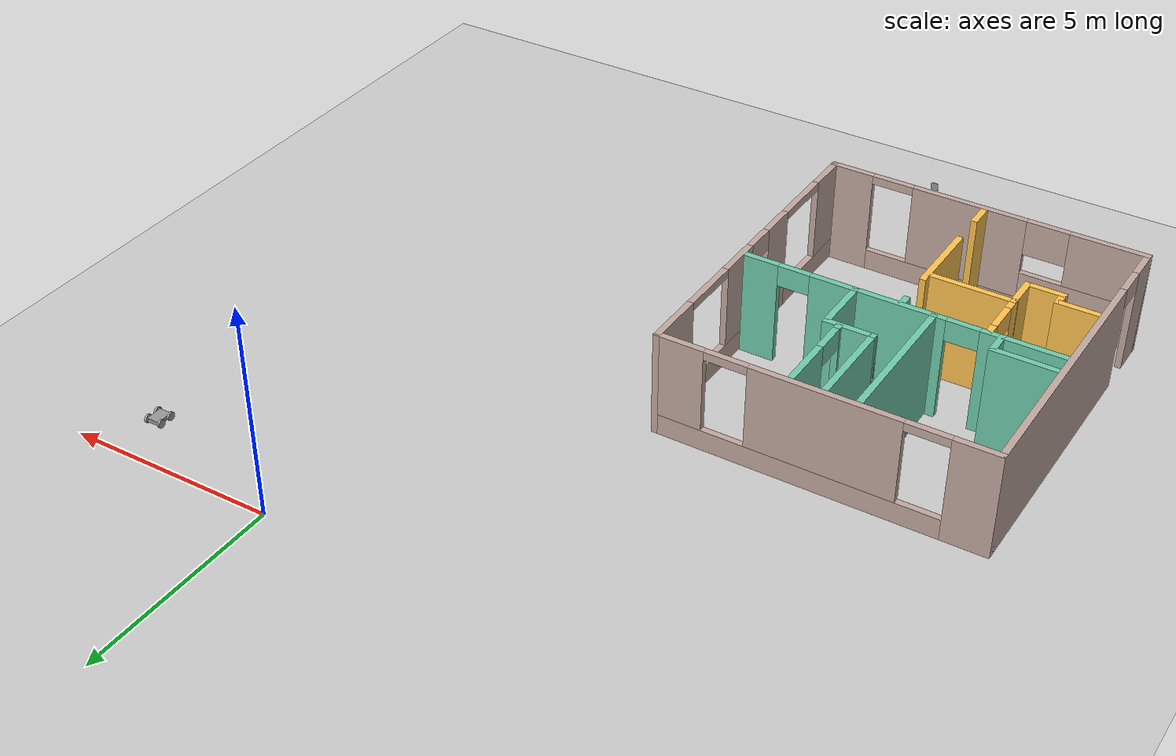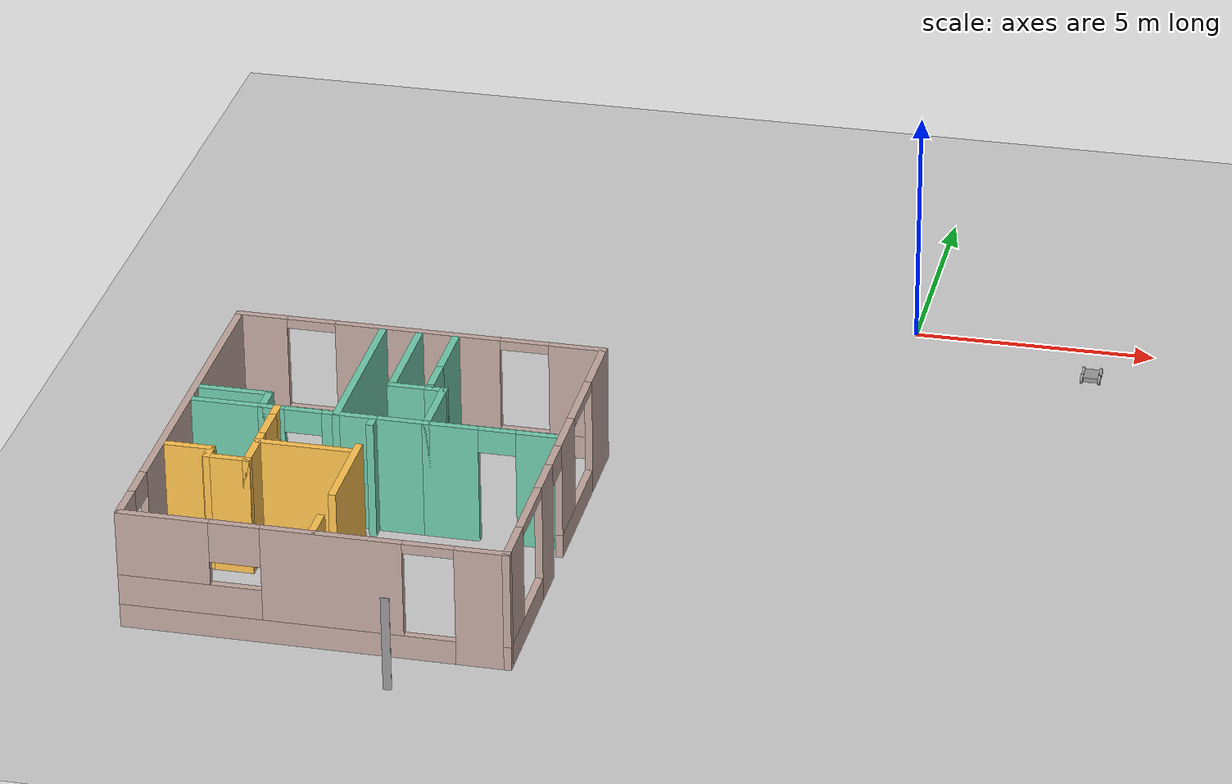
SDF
<sdf version="1.6">
 <world name="default">
  <model name="ground_plane">
   <static>1</static>
   <link name="link">
    <collision name="collision">
     <geometry><plane><normal>0 0 1</normal><size>100 100</size></plane></geometry>
     <surface>
      <contact><collide_bitmask>65535</collide_bitmask></contact>
      <friction><ode><mu>100</mu><mu2>50</mu2></ode></friction>
     </surface>
    </collision>
    <visual name="visual">
     <cast_shadows>0</cast_shadows>
     <geometry><plane><normal>0 0 1</normal><size>100 100</size></plane></geometry>
     <material>
      <script><uri>file://media/materials/scripts/gazebo.material</uri><name>Gazebo/Grey</name></script>
     </material>
    </visual>
   </link>
  </model>
  <model name="4wheelSmallDiff">
   <link name="link_0">
    <inertial>
     <mass>1</mass>
     <inertia>
      <ixx>0.166667</ixx>
      <ixy>0</ixy>
      <ixz>0</ixz>
      <iyy>0.166667</iyy>
      <iyz>0</iyz>
      <izz>0.166667</izz>
     </inertia>
    </inertial>
    <pose>-0.05296 -0.054413 -0.019995 0 -0 0</pose>
    <visual name="visual">
     <geometry><box><size>0.4 0.3 0.1</size></box></geometry>
     <material>
      <lighting>1</lighting>
      <script><uri>file://media/materials/scripts/gazebo.material</uri><name>Gazebo/Grey</name></script>
      <shader type="pixel"><normal_map>__default__</normal_map></shader>
      <ambient>0.3 0.3 0.3 1</ambient>
      <diffuse>0.7 0.7 0.7 1</diffuse>
      <specular>0.01 0.01 0.01 1</specular>
      <emissive>0 0 0 1</emissive>
     </material>
    </visual>
    <collision name="collision">
     <geometry><box><size>0.4 0.3 0.1</size></box></geometry>
     <surface>
      <friction>
       <ode><mu>1</mu><mu2>1</mu2><fdir1>0 0 0</fdir1><slip1>0</slip1><slip2>0</slip2></ode>
       <torsional>
        <coefficient>1</coefficient>
        <patch_radius>0</patch_radius>
        <surface_radius>0</surface_radius>
        <use_patch_radius>1</use_patch_radius>
        <ode><slip>0</slip></ode>
       </torsional>
      </friction>
      <bounce><restitution_coefficient>0</restitution_coefficient><threshold>1e+06</threshold></bounce>
      <contact>
       <collide_without_contact>0</collide_without_contact>
       <collide_without_contact_bitmask>1</collide_without_contact_bitmask>
       <collide_bitmask>1</collide_bitmask>
       <ode>
        <soft_cfm>0</soft_cfm>
        <soft_erp>0.2</soft_erp>
        <kp>1e+13</kp>
        <kd>1</kd>
        <max_vel>0.01</max_vel>
        <min_depth>0</min_depth>
       </ode>
       <bullet>
        <split_impulse>1</split_impulse>
        <split_impulse_penetration_threshold>-0.01</split_impulse_penetration_threshold>
        <soft_cfm>0</soft_cfm>
        <soft_erp>0.2</soft_erp>
        <kp>1e+13</kp>
        <kd>1</kd>
       </bullet>
      </contact>
     </surface>
    </collision>
   </link>
   <link name="link_1">
    <inertial>
     <mass>1</mass>
     <inertia><ixx>0.145833</ixx><ixy>0</ixy><ixz>0</ixz><iyy>0.145833</iyy><iyz>0</iyz><izz>0.125</izz></inertia>
    </inertial>
    <pose>-0.20296 -0.234413 -0.019995 1.5707 -0 0</pose>
    <visual name="visual">
     <geometry><cylinder><radius>0.1</radius><length>0.05</length></cylinder></geometry>
     <material>
      <lighting>1</lighting>
      <script><uri>file://media/materials/scripts/gazebo.material</uri><name>Gazebo/Grey</name></script>
      <shader type="pixel"><normal_map>__default__</normal_map></shader>
      <ambient>0.3 0.3 0.3 1</ambient>
      <diffuse>0.7 0.7 0.7 1</diffuse>
      <specular>0.01 0.01 0.01 1</specular>
      <emissive>0 0 0 1</emissive>
     </material>
    </visual>
    <collision name="collision">
     <geometry><cylinder><radius>0.1</radius><length>0.05</length></cylinder></geometry>
     <surface>
      <friction>
       <ode><mu>1</mu><mu2>1</mu2><fdir1>0 0 0</fdir1><slip1>0</slip1><slip2>0</slip2></ode>
       <torsional>
        <coefficient>1</coefficient>
        <patch_radius>0</patch_radius>
        <surface_radius>0</surface_radius>
        <use_patch_radius>1</use_patch_radius>
        <ode><slip>0</slip></ode>
       </torsional>
      </friction>
      <bounce><restitution_coefficient>0</restitution_coefficient><threshold>1e+06</threshold></bounce>
      <contact>
       <collide_without_contact>0</collide_without_contact>
       <collide_without_contact_bitmask>1</collide_without_contact_bitmask>
       <collide_bitmask>1</collide_bitmask>
       <ode>
        <soft_cfm>0</soft_cfm>
        <soft_erp>0.2</soft_erp>
        <kp>1e+13</kp>
        <kd>1</kd>
        <max_vel>0.01</max_vel>
        <min_depth>0</min_depth>
       </ode>
       <bullet>
        <split_impulse>1</split_impulse>
        <split_impulse_penetration_threshold>-0.01</split_impulse_penetration_threshold>
        <soft_cfm>0</soft_cfm>
        <soft_erp>0.2</soft_erp>
        <kp>1e+13</kp>
        <kd>1</kd>
       </bullet>
      </contact>
     </surface>
    </collision>
   </link>
   <link name="link_1_clone">
    <inertial>
     <mass>1</mass>
     <inertia><ixx>0.145833</ixx><ixy>0</ixy><ixz>0</ixz><iyy>0.145833</iyy><iyz>0</iyz><izz>0.125</izz></inertia>
    </inertial>
    <pose>0.09704 -0.234413 -0.019995 1.5707 -0 0</pose>
    <visual name="visual">
     <geometry><cylinder><radius>0.1</radius><length>0.05</length></cylinder></geometry>
     <material>
      <lighting>1</lighting>
      <script><uri>file://media/materials/scripts/gazebo.material</uri><name>Gazebo/Grey</name></script>
      <shader type="pixel"><normal_map>__default__</normal_map></shader>
      <ambient>0.3 0.3 0.3 1</ambient>
      <diffuse>0.7 0.7 0.7 1</diffuse>
      <specular>0.01 0.01 0.01 1</specular>
      <emissive>0 0 0 1</emissive>
     </material>
    </visual>
    <collision name="collision">
     <geometry><cylinder><radius>0.1</radius><length>0.05</length></cylinder></geometry>
     <surface>
      <friction>
       <ode><mu>1</mu><mu2>1</mu2><fdir1>0 0 0</fdir1><slip1>0</slip1><slip2>0</slip2></ode>
       <torsional>
        <coefficient>1</coefficient>
        <patch_radius>0</patch_radius>
        <surface_radius>0</surface_radius>
        <use_patch_radius>1</use_patch_radius>
        <ode><slip>0</slip></ode>
       </torsional>
      </friction>
      <bounce><restitution_coefficient>0</restitution_coefficient><threshold>1e+06</threshold></bounce>
      <contact>
       <collide_without_contact>0</collide_without_contact>
       <collide_without_contact_bitmask>1</collide_without_contact_bitmask>
       <collide_bitmask>1</collide_bitmask>
       <ode>
        <soft_cfm>0</soft_cfm>
        <soft_erp>0.2</soft_erp>
        <kp>1e+13</kp>
        <kd>1</kd>
        <max_vel>0.01</max_vel>
        <min_depth>0</min_depth>
       </ode>
       <bullet>
        <split_impulse>1</split_impulse>
        <split_impulse_penetration_threshold>-0.01</split_impulse_penetration_threshold>
        <soft_cfm>0</soft_cfm>
        <soft_erp>0.2</soft_erp>
        <kp>1e+13</kp>
        <kd>1</kd>
       </bullet>
      </contact>
     </surface>
    </collision>
   </link>
   <link name="link_1_clone_clone">
    <inertial>
     <mass>1</mass>
     <inertia><ixx>0.145833</ixx><ixy>0</ixy><ixz>0</ixz><iyy>0.145833</iyy><iyz>0</iyz><izz>0.125</izz></inertia>
    </inertial>
    <pose>-0.20296 0.125587 -0.019995 1.5707 -0 0</pose>
    <visual name="visual">
     <geometry><cylinder><radius>0.1</radius><length>0.05</length></cylinder></geometry>
     <material>
      <lighting>1</lighting>
      <script><uri>file://media/materials/scripts/gazebo.material</uri><name>Gazebo/Grey</name></script>
      <shader type="pixel"><normal_map>__default__</normal_map></shader>
      <ambient>0.3 0.3 0.3 1</ambient>
      <diffuse>0.7 0.7 0.7 1</diffuse>
      <specular>0.01 0.01 0.01 1</specular>
      <emissive>0 0 0 1</emissive>
     </material>
    </visual>
    <collision name="collision">
     <geometry><cylinder><radius>0.1</radius><length>0.05</length></cylinder></geometry>
     <surface>
      <friction>
       <ode><mu>1</mu><mu2>1</mu2><fdir1>0 0 0</fdir1><slip1>0</slip1><slip2>0</slip2></ode>
       <torsional>
        <coefficient>1</coefficient>
        <patch_radius>0</patch_radius>
        <surface_radius>0</surface_radius>
        <use_patch_radius>1</use_patch_radius>
        <ode><slip>0</slip></ode>
       </torsional>
      </friction>
      <bounce><restitution_coefficient>0</restitution_coefficient><threshold>1e+06</threshold></bounce>
      <contact>
       <collide_without_contact>0</collide_without_contact>
       <collide_without_contact_bitmask>1</collide_without_contact_bitmask>
       <collide_bitmask>1</collide_bitmask>
       <ode>
        <soft_cfm>0</soft_cfm>
        <soft_erp>0.2</soft_erp>
        <kp>1e+13</kp>
        <kd>1</kd>
        <max_vel>0.01</max_vel>
        <min_depth>0</min_depth>
       </ode>
       <bullet>
        <split_impulse>1</split_impulse>
        <split_impulse_penetration_threshold>-0.01</split_impulse_penetration_threshold>
        <soft_cfm>0</soft_cfm>
        <soft_erp>0.2</soft_erp>
        <kp>1e+13</kp>
        <kd>1</kd>
       </bullet>
      </contact>
     </surface>
    </collision>
   </link>
   <link name="link_1_clone_clone_clone">
    <inertial>
     <mass>1</mass>
     <inertia><ixx>0.145833</ixx><ixy>0</ixy><ixz>0</ixz><iyy>0.145833</iyy><iyz>0</iyz><izz>0.125</izz></inertia>
    </inertial>
    <pose>0.09704 0.125587 -0.019995 1.5707 -0 0</pose>
    <visual name="visual">
     <geometry><cylinder><radius>0.1</radius><length>0.05</length></cylinder></geometry>
     <material>
      <lighting>1</lighting>
      <script><uri>file://media/materials/scripts/gazebo.material</uri><name>Gazebo/Grey</name></script>
      <shader type="pixel"><normal_map>__default__</normal_map></shader>
      <ambient>0.3 0.3 0.3 1</ambient>
      <diffuse>0.7 0.7 0.7 1</diffuse>
      <specular>0.01 0.01 0.01 1</specular>
      <emissive>0 0 0 1</emissive>
     </material>
    </visual>
    <collision name="collision">
     <geometry><cylinder><radius>0.1</radius><length>0.05</length></cylinder></geometry>
     <surface>
      <friction>
       <ode><mu>1</mu><mu2>1</mu2><fdir1>0 0 0</fdir1><slip1>0</slip1><slip2>0</slip2></ode>
       <torsional>
        <coefficient>1</coefficient>
        <patch_radius>0</patch_radius>
        <surface_radius>0</surface_radius>
        <use_patch_radius>1</use_patch_radius>
        <ode><slip>0</slip></ode>
       </torsional>
      </friction>
      <bounce><restitution_coefficient>0</restitution_coefficient><threshold>1e+06</threshold></bounce>
      <contact>
       <collide_without_contact>0</collide_without_contact>
       <collide_without_contact_bitmask>1</collide_without_contact_bitmask>
       <collide_bitmask>1</collide_bitmask>
       <ode>
        <soft_cfm>0</soft_cfm>
        <soft_erp>0.2</soft_erp>
        <kp>1e+13</kp>
        <kd>1</kd>
        <max_vel>0.01</max_vel>
        <min_depth>0</min_depth>
       </ode>
       <bullet>
        <split_impulse>1</split_impulse>
        <split_impulse_penetration_threshold>-0.01</split_impulse_penetration_threshold>
        <soft_cfm>0</soft_cfm>
        <soft_erp>0.2</soft_erp>
        <kp>1e+13</kp>
        <kd>1</kd>
       </bullet>
      </contact>
     </surface>
    </collision>
   </link>
   <joint name="link_0_JOINT_0" type="revolute">
    <parent>link_0</parent>
    <child>link_1</child>
    <axis>
     <xyz>0 0 1</xyz>
     <limit>
      <lower>-1.79769e+308</lower>
      <upper>1.79769e+308</upper>
      <effort>-1</effort>
      <velocity>-1</velocity>
     </limit>
     <dynamics>
      <spring_reference>0</spring_reference>
      <spring_stiffness>0</spring_stiffness>
      <damping>0</damping>
     </dynamics>
     <use_parent_model_frame>0</use_parent_model_frame>
    </axis>
    <physics>
     <ode><limit><cfm>0</cfm><erp>0.2</erp></limit><suspension><cfm>0</cfm><erp>0.2</erp></suspension></ode>
    </physics>
   </joint>
   <joint name="link_0_JOINT_1" type="revolute">
    <parent>link_0</parent>
    <child>link_1_clone</child>
    <axis>
     <xyz>0 0 1</xyz>
     <limit>
      <lower>-1.79769e+308</lower>
      <upper>1.79769e+308</upper>
      <effort>-1</effort>
      <velocity>-1</velocity>
     </limit>
     <dynamics>
      <spring_reference>0</spring_reference>
      <spring_stiffness>0</spring_stiffness>
      <damping>0</damping>
     </dynamics>
     <use_parent_model_frame>0</use_parent_model_frame>
    </axis>
    <physics>
     <ode><limit><cfm>0</cfm><erp>0.2</erp></limit><suspension><cfm>0</cfm><erp>0.2</erp></suspension></ode>
    </physics>
   </joint>
   <joint name="link_0_JOINT_2" type="revolute">
    <parent>link_0</parent>
    <child>link_1_clone_clone</child>
    <axis>
     <xyz>0 0 1</xyz>
     <limit>
      <lower>-1.79769e+308</lower>
      <upper>1.79769e+308</upper>
      <effort>-1</effort>
      <velocity>-1</velocity>
     </limit>
     <dynamics>
      <spring_reference>0</spring_reference>
      <spring_stiffness>0</spring_stiffness>
      <damping>0</damping>
     </dynamics>
     <use_parent_model_frame>0</use_parent_model_frame>
    </axis>
    <physics>
     <ode><limit><cfm>0</cfm><erp>0.2</erp></limit><suspension><cfm>0</cfm><erp>0.2</erp></suspension></ode>
    </physics>
   </joint>
   <joint name="link_0_JOINT_3" type="revolute">
    <parent>link_0</parent>
    <child>link_1_clone_clone_clone</child>
    <axis>
     <xyz>0 0 1</xyz>
     <limit>
      <lower>-1.79769e+308</lower>
      <upper>1.79769e+308</upper>
      <effort>-1</effort>
      <velocity>-1</velocity>
     </limit>
     <dynamics>
      <spring_reference>0</spring_reference>
      <spring_stiffness>0</spring_stiffness>
      <damping>0</damping>
     </dynamics>
     <use_parent_model_frame>0</use_parent_model_frame>
    </axis>
    <physics>
     <ode><limit><cfm>0</cfm><erp>0.2</erp></limit><suspension><cfm>0</cfm><erp>0.2</erp></suspension></ode>
    </physics>
   </joint>
   <static>0</static>
   <pose>3.80566 -1.15308 0.119997 0 -0 1.58948</pose>
  </model>
  <model name="apartment_0">
   <pose>-9 -10.5424 0 0 -0 1.5707</pose>
   <link name="Door_1">
    <collision name="Door_1_Collision">
     <geometry><box><size>0.01 0.17 2</size></box></geometry>
     <pose>0 0 1 0 -0 0</pose>
    </collision>
    <visual name="Door_1_Visual">
     <pose>0 0 1 0 -0 0</pose>
     <geometry><box><size>0.01 0.17 2</size></box></geometry>
     <material>
      <script><uri>file://media/materials/scripts/gazebo.material</uri><name>Gazebo/Grey</name></script>
     </material>
    </visual>
    <pose>-5.25474 -1.71616 0 0 0 -3.11558</pose>
   </link>
   <link name="Wall_0">
    <pose>-0 3.75 0 0 -0 0</pose>
    <visual name="Wall_0_Visual_0">
     <pose>-3.7 0 1.25 0 -0 0</pose>
     <geometry><box><size>0.85 0.15 2.5</size></box></geometry>
     <material>
      <script><uri>file://media/materials/scripts/gazebo.material</uri><name>Gazebo/Grey</name></script>
      <ambient>0.760784 0.662745 0.627451 1</ambient>
     </material>
     <meta><layer>0</layer></meta>
    </visual>
    <collision name="Wall_0_Collision_0">
     <geometry><box><size>0.85 0.15 2.5</size></box></geometry>
     <pose>-3.7 0 1.25 0 -0 0</pose>
    </collision>
    <visual name="Wall_0_Visual_1">
     <pose>0.8 0 1.25 0 -0 0</pose>
     <geometry><box><size>6.65 0.15 2.5</size></box></geometry>
     <material>
      <script><uri>file://media/materials/scripts/gazebo.material</uri><name>Gazebo/Grey</name></script>
      <ambient>0.760784 0.662745 0.627451 1</ambient>
     </material>
     <meta><layer>0</layer></meta>
    </visual>
    <collision name="Wall_0_Collision_1">
     <geometry><box><size>6.65 0.15 2.5</size></box></geometry>
     <pose>0.8 0 1.25 0 -0 0</pose>
    </collision>
    <visual name="Wall_0_Visual_2">
     <pose>-2.9 0 2.25 0 -0 0</pose>
     <geometry><box><size>0.75 0.15 0.5</size></box></geometry>
     <material>
      <script><uri>file://media/materials/scripts/gazebo.material</uri><name>Gazebo/Grey</name></script>
      <ambient>0.760784 0.662745 0.627451 1</ambient>
     </material>
     <meta><layer>0</layer></meta>
    </visual>
    <collision name="Wall_0_Collision_2">
     <geometry><box><size>0.75 0.15 0.5</size></box></geometry>
     <pose>-2.9 0 2.25 0 -0 0</pose>
    </collision>
   </link>
   <link name="Wall_1">
    <pose>4.05 -0 0 0 -0 -1.5708</pose>
    <visual name="Wall_1_Visual_0">
     <pose>-3.2875 0 1.25 0 -0 0</pose>
     <geometry><box><size>1.075 0.15 2.5</size></box></geometry>
     <material>
      <script><uri>file://media/materials/scripts/gazebo.material</uri><name>Gazebo/Grey</name></script>
      <ambient>0.760784 0.662745 0.627451 1</ambient>
     </material>
     <meta><layer>0</layer></meta>
    </visual>
    <collision name="Wall_1_Collision_0">
     <geometry><box><size>1.075 0.15 2.5</size></box></geometry>
     <pose>-3.2875 0 1.25 0 -0 0</pose>
    </collision>
    <visual name="Wall_1_Visual_1">
     <pose>0.5375 0 0.25 0 -0 0</pose>
     <geometry><box><size>6.575 0.15 0.5</size></box></geometry>
     <material>
      <script><uri>file://media/materials/scripts/gazebo.material</uri><name>Gazebo/Grey</name></script>
      <ambient>0.760784 0.662745 0.627451 1</ambient>
     </material>
     <meta><layer>0</layer></meta>
    </visual>
    <collision name="Wall_1_Collision_1">
     <geometry><box><size>6.575 0.15 0.5</size></box></geometry>
     <pose>0.5375 0 0.25 0 -0 0</pose>
    </collision>
    <visual name="Wall_1_Visual_2">
     <pose>-0.050682 0 1.5 0 -0 0</pose>
     <geometry><box><size>3.39864 0.15 2</size></box></geometry>
     <material>
      <script><uri>file://media/materials/scripts/gazebo.material</uri><name>Gazebo/Grey</name></script>
      <ambient>0.760784 0.662745 0.627451 1</ambient>
     </material>
     <meta><layer>0</layer></meta>
    </visual>
    <collision name="Wall_1_Collision_2">
     <geometry><box><size>3.39864 0.15 2</size></box></geometry>
     <pose>-0.050682 0 1.5 0 -0 0</pose>
    </collision>
    <visual name="Wall_1_Visual_3">
     <pose>3.23682 0 1.5 0 -0 0</pose>
     <geometry><box><size>1.17636 0.15 2</size></box></geometry>
     <material>
      <script><uri>file://media/materials/scripts/gazebo.material</uri><name>Gazebo/Grey</name></script>
      <ambient>0.760784 0.662745 0.627451 1</ambient>
     </material>
     <meta><layer>0</layer></meta>
    </visual>
    <collision name="Wall_1_Collision_3">
     <geometry><box><size>1.17636 0.15 2</size></box></geometry>
     <pose>3.23682 0 1.5 0 -0 0</pose>
    </collision>
    <visual name="Wall_1_Visual_4">
     <pose>-2.25 0 2.4 0 -0 0</pose>
     <geometry><box><size>1 0.15 0.2</size></box></geometry>
     <material>
      <script><uri>file://media/materials/scripts/gazebo.material</uri><name>Gazebo/Grey</name></script>
      <ambient>0.760784 0.662745 0.627451 1</ambient>
     </material>
     <meta><layer>0</layer></meta>
    </visual>
    <collision name="Wall_1_Collision_4">
     <geometry><box><size>1 0.15 0.2</size></box></geometry>
     <pose>-2.25 0 2.4 0 -0 0</pose>
    </collision>
    <visual name="Wall_1_Visual_5">
     <pose>2.14864 0 2.4 0 -0 0</pose>
     <geometry><box><size>1 0.15 0.2</size></box></geometry>
     <material>
      <script><uri>file://media/materials/scripts/gazebo.material</uri><name>Gazebo/Grey</name></script>
      <ambient>0.760784 0.662745 0.627451 1</ambient>
     </material>
     <meta><layer>0</layer></meta>
    </visual>
    <collision name="Wall_1_Collision_5">
     <geometry><box><size>1 0.15 0.2</size></box></geometry>
     <pose>2.14864 0 2.4 0 -0 0</pose>
    </collision>
   </link>
   <link name="Wall_10">
    <collision name="Wall_10_Collision">
     <geometry><box><size>0.9 0.15 2.5</size></box></geometry>
     <pose>0 0 1.25 0 -0 0</pose>
    </collision>
    <visual name="Wall_10_Visual">
     <pose>0 0 1.25 0 -0 0</pose>
     <geometry><box><size>0.9 0.15 2.5</size></box></geometry>
     <material>
      <script><uri>file://media/materials/scripts/gazebo.material</uri><name>Gazebo/Grey</name></script>
      <ambient>0.435294 0.796078 0.67451 1</ambient>
     </material>
     <meta><layer>0</layer></meta>
    </visual>
    <pose>1.8 -0.375 0 0 -0 1.5708</pose>
   </link>
   <link name="Wall_11">
    <collision name="Wall_11_Collision">
     <geometry><box><size>2.25 0.15 2.5</size></box></geometry>
     <pose>0 0 1.25 0 -0 0</pose>
    </collision>
    <visual name="Wall_11_Visual">
     <pose>0 0 1.25 0 -0 0</pose>
     <geometry><box><size>2.25 0.15 2.5</size></box></geometry>
     <material>
      <script><uri>file://media/materials/scripts/gazebo.material</uri><name>Gazebo/Grey</name></script>
      <ambient>0.435294 0.796078 0.67451 1</ambient>
     </material>
     <meta><layer>0</layer></meta>
    </visual>
    <pose>2.85 -0 0 0 -0 0</pose>
   </link>
   <link name="Wall_13">
    <collision name="Wall_13_Collision">
     <geometry><box><size>3.6 0.15 2.5</size></box></geometry>
     <pose>0 0 1.25 0 -0 0</pose>
    </collision>
    <visual name="Wall_13_Visual">
     <pose>0 0 1.25 0 -0 0</pose>
     <geometry><box><size>3.6 0.15 2.5</size></box></geometry>
     <material>
      <script><uri>file://media/materials/scripts/gazebo.material</uri><name>Gazebo/Grey</name></script>
      <ambient>0.435294 0.796078 0.67451 1</ambient>
     </material>
     <meta><layer>0</layer></meta>
    </visual>
    <pose>2.175 0.75 0 0 -0 3.14159</pose>
   </link>
   <link name="Wall_14">
    <collision name="Wall_14_Collision">
     <geometry><box><size>1.95 0.15 2.5</size></box></geometry>
     <pose>0 0 1.25 0 -0 0</pose>
    </collision>
    <visual name="Wall_14_Visual">
     <pose>0 0 1.25 0 -0 0</pose>
     <geometry><box><size>1.95 0.15 2.5</size></box></geometry>
     <material>
      <script><uri>file://media/materials/scripts/gazebo.material</uri><name>Gazebo/Grey</name></script>
      <ambient>0.435294 0.796078 0.67451 1</ambient>
     </material>
     <meta><layer>0</layer></meta>
    </visual>
    <pose>0.45 -0.15 0 0 -0 -1.5708</pose>
   </link>
   <link name="Wall_16">
    <pose>0.45 2.175 0 0 -0 1.5708</pose>
    <visual name="Wall_16_Visual_0">
     <pose>-1.31932 0 1.25 0 -0 0</pose>
     <geometry><box><size>0.361363 0.15 2.5</size></box></geometry>
     <material>
      <script><uri>file://media/materials/scripts/gazebo.material</uri><name>Gazebo/Grey</name></script>
      <ambient>0.435294 0.796078 0.67451 1</ambient>
     </material>
     <meta><layer>0</layer></meta>
    </visual>
    <collision name="Wall_16_Collision_0">
     <geometry><box><size>0.361363 0.15 2.5</size></box></geometry>
     <pose>-1.31932 0 1.25 0 -0 0</pose>
    </collision>
    <visual name="Wall_16_Visual_1">
     <pose>0.555682 0 1.25 0 -0 0</pose>
     <geometry><box><size>1.88864 0.15 2.5</size></box></geometry>
     <material>
      <script><uri>file://media/materials/scripts/gazebo.material</uri><name>Gazebo/Grey</name></script>
      <ambient>0.435294 0.796078 0.67451 1</ambient>
     </material>
     <meta><layer>0</layer></meta>
    </visual>
    <collision name="Wall_16_Collision_1">
     <geometry><box><size>1.88864 0.15 2.5</size></box></geometry>
     <pose>0.555682 0 1.25 0 -0 0</pose>
    </collision>
    <visual name="Wall_16_Visual_2">
     <pose>-0.763637 0 2.25 0 -0 0</pose>
     <geometry><box><size>0.75 0.15 0.5</size></box></geometry>
     <material>
      <script><uri>file://media/materials/scripts/gazebo.material</uri><name>Gazebo/Grey</name></script>
      <ambient>0.435294 0.796078 0.67451 1</ambient>
     </material>
     <meta><layer>0</layer></meta>
    </visual>
    <collision name="Wall_16_Collision_2">
     <geometry><box><size>0.75 0.15 0.5</size></box></geometry>
     <pose>-0.763637 0 2.25 0 -0 0</pose>
    </collision>
   </link>
   <link name="Wall_18">
    <collision name="Wall_18_Collision">
     <geometry><box><size>0.65 0.15 2.5</size></box></geometry>
     <pose>0 0 1.25 0 -0 0</pose>
    </collision>
    <visual name="Wall_18_Visual">
     <pose>0 0 1.25 0 -0 0</pose>
     <geometry><box><size>0.65 0.15 2.5</size></box></geometry>
     <material>
      <script><uri>file://media/materials/scripts/gazebo.material</uri><name>Gazebo/Grey</name></script>
      <ambient>0.435294 0.796078 0.67451 1</ambient>
     </material>
     <meta><layer>0</layer></meta>
    </visual>
    <pose>0.7 2.25 0 0 -0 0</pose>
   </link>
   <link name="Wall_19">
    <collision name="Wall_19_Collision">
     <geometry><box><size>1.5 0.15 2.5</size></box></geometry>
     <pose>0 0 1.25 0 -0 0</pose>
    </collision>
    <visual name="Wall_19_Visual">
     <pose>0 0 1.25 0 -0 0</pose>
     <geometry><box><size>1.5 0.15 2.5</size></box></geometry>
     <material>
      <script><uri>file://media/materials/scripts/gazebo.material</uri><name>Gazebo/Grey</name></script>
      <ambient>0.435294 0.796078 0.67451 1</ambient>
     </material>
     <meta><layer>0</layer></meta>
    </visual>
    <pose>0.95 2.925 0 0 -0 1.5708</pose>
   </link>
   <link name="Wall_2">
    <pose>-0 -3.75 0 0 -0 3.14159</pose>
    <visual name="Wall_2_Visual_0">
     <pose>-3.4125 0 1.25 0 -0 0</pose>
     <geometry><box><size>1.425 0.15 2.5</size></box></geometry>
     <material>
      <script><uri>file://media/materials/scripts/gazebo.material</uri><name>Gazebo/Grey</name></script>
      <ambient>0.760784 0.662745 0.627451 1</ambient>
     </material>
     <meta><layer>0</layer></meta>
    </visual>
    <collision name="Wall_2_Collision_0">
     <geometry><box><size>1.425 0.15 2.5</size></box></geometry>
     <pose>-3.4125 0 1.25 0 -0 0</pose>
    </collision>
    <visual name="Wall_2_Visual_1">
     <pose>1.1 0 1.25 0 -0 0</pose>
     <geometry><box><size>0.899991 0.15 2.5</size></box></geometry>
     <material>
      <script><uri>file://media/materials/scripts/gazebo.material</uri><name>Gazebo/Grey</name></script>
      <ambient>0.760784 0.662745 0.627451 1</ambient>
     </material>
     <meta><layer>0</layer></meta>
    </visual>
    <collision name="Wall_2_Collision_1">
     <geometry><box><size>0.899991 0.15 2.5</size></box></geometry>
     <pose>1.1 0 1.25 0 -0 0</pose>
    </collision>
    <visual name="Wall_2_Visual_2">
     <pose>-1.4 0 0.25 0 -0 0</pose>
     <geometry><box><size>2.60001 0.15 0.5</size></box></geometry>
     <material>
      <script><uri>file://media/materials/scripts/gazebo.material</uri><name>Gazebo/Grey</name></script>
      <ambient>0.760784 0.662745 0.627451 1</ambient>
     </material>
     <meta><layer>0</layer></meta>
    </visual>
    <collision name="Wall_2_Collision_2">
     <geometry><box><size>2.60001 0.15 0.5</size></box></geometry>
     <pose>-1.4 0 0.25 0 -0 0</pose>
    </collision>
    <visual name="Wall_2_Visual_3">
     <pose>2.8375 0 0.25 0 -0 0</pose>
     <geometry><box><size>2.575 0.15 0.5</size></box></geometry>
     <material>
      <script><uri>file://media/materials/scripts/gazebo.material</uri><name>Gazebo/Grey</name></script>
      <ambient>0.760784 0.662745 0.627451 1</ambient>
     </material>
     <meta><layer>0</layer></meta>
    </visual>
    <collision name="Wall_2_Collision_3">
     <geometry><box><size>2.575 0.15 0.5</size></box></geometry>
     <pose>2.8375 0 0.25 0 -0 0</pose>
    </collision>
    <visual name="Wall_2_Visual_4">
     <pose>-0.649995 0 1.5 0 -0 0</pose>
     <geometry><box><size>1.10001 0.15 2</size></box></geometry>
     <material>
      <script><uri>file://media/materials/scripts/gazebo.material</uri><name>Gazebo/Grey</name></script>
      <ambient>0.760784 0.662745 0.627451 1</ambient>
     </material>
     <meta><layer>0</layer></meta>
    </visual>
    <collision name="Wall_2_Collision_4">
     <geometry><box><size>1.10001 0.15 2</size></box></geometry>
     <pose>-0.649995 0 1.5 0 -0 0</pose>
    </collision>
    <visual name="Wall_2_Visual_5">
     <pose>-0.649995 0 1.5 0 -0 0</pose>
     <geometry><box><size>1.10001 0.15 2</size></box></geometry>
     <material>
      <script><uri>file://media/materials/scripts/gazebo.material</uri><name>Gazebo/Grey</name></script>
      <ambient>0.760784 0.662745 0.627451 1</ambient>
     </material>
     <meta><layer>0</layer></meta>
    </visual>
    <collision name="Wall_2_Collision_5">
     <geometry><box><size>1.10001 0.15 2</size></box></geometry>
     <pose>-0.649995 0 1.5 0 -0 0</pose>
    </collision>
    <visual name="Wall_2_Visual_6">
     <pose>3.5875 0 1.5 0 -0 0</pose>
     <geometry><box><size>1.075 0.15 2</size></box></geometry>
     <material>
      <script><uri>file://media/materials/scripts/gazebo.material</uri><name>Gazebo/Grey</name></script>
      <ambient>0.760784 0.662745 0.627451 1</ambient>
     </material>
     <meta><layer>0</layer></meta>
    </visual>
    <collision name="Wall_2_Collision_6">
     <geometry><box><size>1.075 0.15 2</size></box></geometry>
     <pose>3.5875 0 1.5 0 -0 0</pose>
    </collision>
    <visual name="Wall_2_Visual_7">
     <pose>0.275009 0 2.25 0 -0 0</pose>
     <geometry><box><size>0.75 0.15 0.5</size></box></geometry>
     <material>
      <script><uri>file://media/materials/scripts/gazebo.material</uri><name>Gazebo/Grey</name></script>
      <ambient>0.760784 0.662745 0.627451 1</ambient>
     </material>
     <meta><layer>0</layer></meta>
    </visual>
    <collision name="Wall_2_Collision_7">
     <geometry><box><size>0.75 0.15 0.5</size></box></geometry>
     <pose>0.275009 0 2.25 0 -0 0</pose>
    </collision>
    <visual name="Wall_2_Visual_8">
     <pose>0.275009 0 2.25 0 -0 0</pose>
     <geometry><box><size>0.75 0.15 0.5</size></box></geometry>
     <material>
      <script><uri>file://media/materials/scripts/gazebo.material</uri><name>Gazebo/Grey</name></script>
      <ambient>0.760784 0.662745 0.627451 1</ambient>
     </material>
     <meta><layer>0</layer></meta>
    </visual>
    <collision name="Wall_2_Collision_8">
     <geometry><box><size>0.75 0.15 0.5</size></box></geometry>
     <pose>0.275009 0 2.25 0 -0 0</pose>
    </collision>
    <visual name="Wall_2_Visual_9">
     <pose>-1.95 0 2.4 0 -0 0</pose>
     <geometry><box><size>1.5 0.15 0.2</size></box></geometry>
     <material>
      <script><uri>file://media/materials/scripts/gazebo.material</uri><name>Gazebo/Grey</name></script>
      <ambient>0.760784 0.662745 0.627451 1</ambient>
     </material>
     <meta><layer>0</layer></meta>
    </visual>
    <collision name="Wall_2_Collision_9">
     <geometry><box><size>1.5 0.15 0.2</size></box></geometry>
     <pose>-1.95 0 2.4 0 -0 0</pose>
    </collision>
    <visual name="Wall_2_Visual_10">
     <pose>2.3 0 2.4 0 -0 0</pose>
     <geometry><box><size>1.5 0.15 0.2</size></box></geometry>
     <material>
      <script><uri>file://media/materials/scripts/gazebo.material</uri><name>Gazebo/Grey</name></script>
      <ambient>0.760784 0.662745 0.627451 1</ambient>
     </material>
     <meta><layer>0</layer></meta>
    </visual>
    <collision name="Wall_2_Collision_10">
     <geometry><box><size>1.5 0.15 0.2</size></box></geometry>
     <pose>2.3 0 2.4 0 -0 0</pose>
    </collision>
   </link>
   <link name="Wall_25">
    <collision name="Wall_25_Collision">
     <geometry><box><size>0.9 0.15 2.5</size></box></geometry>
     <pose>0 0 1.25 0 -0 0</pose>
    </collision>
    <visual name="Wall_25_Visual">
     <pose>0 0 1.25 0 -0 0</pose>
     <geometry><box><size>0.9 0.15 2.5</size></box></geometry>
     <material>
      <script><uri>file://media/materials/scripts/gazebo.material</uri><name>Gazebo/Grey</name></script>
      <ambient>1 0.764706 0.305882 1</ambient>
     </material>
     <meta><layer>0</layer></meta>
    </visual>
    <pose>-1.275 1.95 0 0 -0 3.14159</pose>
   </link>
   <link name="Wall_26">
    <collision name="Wall_26_Collision">
     <geometry><box><size>0.95 0.15 2.5</size></box></geometry>
     <pose>0 0 1.25 0 -0 0</pose>
    </collision>
    <visual name="Wall_26_Visual">
     <pose>0 0 1.25 0 -0 0</pose>
     <geometry><box><size>0.95 0.15 2.5</size></box></geometry>
     <material>
      <script><uri>file://media/materials/scripts/gazebo.material</uri><name>Gazebo/Grey</name></script>
      <ambient>1 0.764706 0.305882 1</ambient>
     </material>
     <meta><layer>0</layer></meta>
    </visual>
    <pose>-1.65 2.35 0 0 -0 1.5708</pose>
   </link>
   <link name="Wall_27">
    <collision name="Wall_27_Collision">
     <geometry><box><size>0.45 0.15 2.5</size></box></geometry>
     <pose>0 0 1.25 0 -0 0</pose>
    </collision>
    <visual name="Wall_27_Visual">
     <pose>0 0 1.25 0 -0 0</pose>
     <geometry><box><size>0.45 0.15 2.5</size></box></geometry>
     <material>
      <script><uri>file://media/materials/scripts/gazebo.material</uri><name>Gazebo/Grey</name></script>
      <ambient>1 0.764706 0.305882 1</ambient>
     </material>
     <meta><layer>0</layer></meta>
    </visual>
    <pose>-1.5 2.75 0 0 -0 0</pose>
   </link>
   <link name="Wall_28">
    <collision name="Wall_28_Collision">
     <geometry><box><size>1 0.15 2.5</size></box></geometry>
     <pose>0 0 1.25 0 -0 0</pose>
    </collision>
    <visual name="Wall_28_Visual">
     <pose>0 0 1.25 0 -0 0</pose>
     <geometry><box><size>1 0.15 2.5</size></box></geometry>
     <material>
      <script><uri>file://media/materials/scripts/gazebo.material</uri><name>Gazebo/Grey</name></script>
      <ambient>1 0.764706 0.305882 1</ambient>
     </material>
     <meta><layer>0</layer></meta>
    </visual>
    <pose>-1.35 3.175 0 0 -0 1.5708</pose>
   </link>
   <link name="Wall_3">
    <pose>-4.05 -0 0 0 -0 1.5708</pose>
    <visual name="Wall_3_Visual_0">
     <pose>-3.2875 0 1.25 0 -0 0</pose>
     <geometry><box><size>1.075 0.15 2.5</size></box></geometry>
     <material>
      <script><uri>file://media/materials/scripts/gazebo.material</uri><name>Gazebo/Grey</name></script>
      <ambient>0.760784 0.662745 0.627451 1</ambient>
     </material>
     <meta><layer>0</layer></meta>
    </visual>
    <collision name="Wall_3_Collision_0">
     <geometry><box><size>1.075 0.15 2.5</size></box></geometry>
     <pose>-3.2875 0 1.25 0 -0 0</pose>
    </collision>
    <visual name="Wall_3_Visual_1">
     <pose>0.5375 0 0.25 0 -0 0</pose>
     <geometry><box><size>6.575 0.15 0.5</size></box></geometry>
     <material>
      <script><uri>file://media/materials/scripts/gazebo.material</uri><name>Gazebo/Grey</name></script>
      <ambient>0.760784 0.662745 0.627451 1</ambient>
     </material>
     <meta><layer>0</layer></meta>
    </visual>
    <collision name="Wall_3_Collision_1">
     <geometry><box><size>6.575 0.15 0.5</size></box></geometry>
     <pose>0.5375 0 0.25 0 -0 0</pose>
    </collision>
    <visual name="Wall_3_Visual_2">
     <pose>-0.375 0 1.5 0 -0 0</pose>
     <geometry><box><size>2.75 0.15 2</size></box></geometry>
     <material>
      <script><uri>file://media/materials/scripts/gazebo.material</uri><name>Gazebo/Grey</name></script>
      <ambient>0.760784 0.662745 0.627451 1</ambient>
     </material>
     <meta><layer>0</layer></meta>
    </visual>
    <collision name="Wall_3_Collision_2">
     <geometry><box><size>2.75 0.15 2</size></box></geometry>
     <pose>-0.375 0 1.5 0 -0 0</pose>
    </collision>
    <visual name="Wall_3_Visual_3">
     <pose>2.4125 0 0.825 0 -0 0</pose>
     <geometry><box><size>2.825 0.15 0.65</size></box></geometry>
     <material>
      <script><uri>file://media/materials/scripts/gazebo.material</uri><name>Gazebo/Grey</name></script>
      <ambient>0.760784 0.662745 0.627451 1</ambient>
     </material>
     <meta><layer>0</layer></meta>
    </visual>
    <collision name="Wall_3_Collision_3">
     <geometry><box><size>2.825 0.15 0.65</size></box></geometry>
     <pose>2.4125 0 0.825 0 -0 0</pose>
    </collision>
    <visual name="Wall_3_Visual_4">
     <pose>2.9125 0 1.825 0 -0 0</pose>
     <geometry><box><size>1.825 0.15 1.35</size></box></geometry>
     <material>
      <script><uri>file://media/materials/scripts/gazebo.material</uri><name>Gazebo/Grey</name></script>
      <ambient>0.760784 0.662745 0.627451 1</ambient>
     </material>
     <meta><layer>0</layer></meta>
    </visual>
    <collision name="Wall_3_Collision_4">
     <geometry><box><size>1.825 0.15 1.35</size></box></geometry>
     <pose>2.9125 0 1.825 0 -0 0</pose>
    </collision>
    <visual name="Wall_3_Visual_5">
     <pose>1.5 0 2.075 0 -0 0</pose>
     <geometry><box><size>1 0.15 0.85</size></box></geometry>
     <material>
      <script><uri>file://media/materials/scripts/gazebo.material</uri><name>Gazebo/Grey</name></script>
      <ambient>0.760784 0.662745 0.627451 1</ambient>
     </material>
     <meta><layer>0</layer></meta>
    </visual>
    <collision name="Wall_3_Collision_5">
     <geometry><box><size>1 0.15 0.85</size></box></geometry>
     <pose>1.5 0 2.075 0 -0 0</pose>
    </collision>
    <visual name="Wall_3_Visual_6">
     <pose>-2.25 0 2.4 0 -0 0</pose>
     <geometry><box><size>1 0.15 0.2</size></box></geometry>
     <material>
      <script><uri>file://media/materials/scripts/gazebo.material</uri><name>Gazebo/Grey</name></script>
      <ambient>0.760784 0.662745 0.627451 1</ambient>
     </material>
     <meta><layer>0</layer></meta>
    </visual>
    <collision name="Wall_3_Collision_6">
     <geometry><box><size>1 0.15 0.2</size></box></geometry>
     <pose>-2.25 0 2.4 0 -0 0</pose>
    </collision>
   </link>
   <link name="Wall_33">
    <collision name="Wall_33_Collision">
     <geometry><box><size>2 0.15 2.5</size></box></geometry>
     <pose>0 0 1.25 0 -0 0</pose>
    </collision>
    <visual name="Wall_33_Visual">
     <pose>0 0 1.25 0 -0 0</pose>
     <geometry><box><size>2 0.15 2.5</size></box></geometry>
     <material>
      <script><uri>file://media/materials/scripts/gazebo.material</uri><name>Gazebo/Grey</name></script>
      <ambient>1 0.764706 0.305882 1</ambient>
     </material>
     <meta><layer>0</layer></meta>
    </visual>
    <pose>-1.625 -0 0 0 -0 3.14159</pose>
   </link>
   <link name="Wall_35">
    <collision name="Wall_35_Collision">
     <geometry><box><size>0.735 0.15 2.5</size></box></geometry>
     <pose>0 0 1.25 0 -0 0</pose>
    </collision>
    <visual name="Wall_35_Visual">
     <pose>0 0 1.25 0 -0 0</pose>
     <geometry><box><size>0.735 0.15 2.5</size></box></geometry>
     <material>
      <script><uri>file://media/materials/scripts/gazebo.material</uri><name>Gazebo/Grey</name></script>
      <ambient>1 0.764706 0.305882 1</ambient>
     </material>
     <meta><layer>0</layer></meta>
    </visual>
    <pose>-3.7425 -0 0 0 -0 0</pose>
   </link>
   <link name="Wall_38">
    <collision name="Wall_38_Collision">
     <geometry><box><size>0.4 0.15 2.5</size></box></geometry>
     <pose>0 0 1.25 0 -0 0</pose>
    </collision>
    <visual name="Wall_38_Visual">
     <pose>0 0 1.25 0 -0 0</pose>
     <geometry><box><size>0.4 0.15 2.5</size></box></geometry>
     <material>
      <script><uri>file://media/materials/scripts/gazebo.material</uri><name>Gazebo/Grey</name></script>
      <ambient>0.435294 0.796078 0.67451 1</ambient>
     </material>
     <meta><layer>0</layer></meta>
    </visual>
    <pose>0.325 -0 0 0 -0 3.14159</pose>
   </link>
   <link name="Wall_40">
    <collision name="Wall_40_Collision">
     <geometry><box><size>2 0.15 2.5</size></box></geometry>
     <pose>0 0 1.25 0 -0 0</pose>
    </collision>
    <visual name="Wall_40_Visual">
     <pose>0 0 1.25 0 -0 0</pose>
     <geometry><box><size>2 0.15 2.5</size></box></geometry>
     <material>
      <script><uri>file://media/materials/scripts/gazebo.material</uri><name>Gazebo/Grey</name></script>
      <ambient>1 0.764706 0.305882 1</ambient>
     </material>
     <meta><layer>0</layer></meta>
    </visual>
    <pose>-0.9 1.025 0 0 -0 -1.5708</pose>
   </link>
   <link name="Wall_42">
    <pose>-0.225 1.95 0 0 -0 0</pose>
    <visual name="Wall_42_Visual_0">
     <pose>-0.557505 0 1.25 0 -0 0</pose>
     <geometry><box><size>0.384991 0.15 2.5</size></box></geometry>
     <material>
      <script><uri>file://media/materials/scripts/gazebo.material</uri><name>Gazebo/Grey</name></script>
      <ambient>1 0.764706 0.305882 1</ambient>
     </material>
     <meta><layer>0</layer></meta>
    </visual>
    <collision name="Wall_42_Collision_0">
     <geometry><box><size>0.384991 0.15 2.5</size></box></geometry>
     <pose>-0.557505 0 1.25 0 -0 0</pose>
    </collision>
    <visual name="Wall_42_Visual_1">
     <pose>0.567495 0 1.25 0 -0 0</pose>
     <geometry><box><size>0.365009 0.15 2.5</size></box></geometry>
     <material>
      <script><uri>file://media/materials/scripts/gazebo.material</uri><name>Gazebo/Grey</name></script>
      <ambient>1 0.764706 0.305882 1</ambient>
     </material>
     <meta><layer>0</layer></meta>
    </visual>
    <collision name="Wall_42_Collision_1">
     <geometry><box><size>0.365009 0.15 2.5</size></box></geometry>
     <pose>0.567495 0 1.25 0 -0 0</pose>
    </collision>
    <visual name="Wall_42_Visual_2">
     <pose>0.009991 0 2.25 0 -0 0</pose>
     <geometry><box><size>0.75 0.15 0.5</size></box></geometry>
     <material>
      <script><uri>file://media/materials/scripts/gazebo.material</uri><name>Gazebo/Grey</name></script>
      <ambient>1 0.764706 0.305882 1</ambient>
     </material>
     <meta><layer>0</layer></meta>
    </visual>
    <collision name="Wall_42_Collision_2">
     <geometry><box><size>0.75 0.15 0.5</size></box></geometry>
     <pose>0.009991 0 2.25 0 -0 0</pose>
    </collision>
   </link>
   <link name="Wall_5">
    <pose>0.45 -2.325 0 0 -0 1.5708</pose>
    <visual name="Wall_5_Visual_0">
     <pose>-0.934318 0 1.25 0 -0 0</pose>
     <geometry><box><size>0.831364 0.15 2.5</size></box></geometry>
     <material>
      <script><uri>file://media/materials/scripts/gazebo.material</uri><name>Gazebo/Grey</name></script>
      <ambient>0.435294 0.796078 0.67451 1</ambient>
     </material>
     <meta><layer>0</layer></meta>
    </visual>
    <collision name="Wall_5_Collision_0">
     <geometry><box><size>0.831364 0.15 2.5</size></box></geometry>
     <pose>-0.934318 0 1.25 0 -0 0</pose>
    </collision>
    <visual name="Wall_5_Visual_1">
     <pose>0.790682 0 1.25 0 -0 0</pose>
     <geometry><box><size>1.11864 0.15 2.5</size></box></geometry>
     <material>
      <script><uri>file://media/materials/scripts/gazebo.material</uri><name>Gazebo/Grey</name></script>
      <ambient>0.435294 0.796078 0.67451 1</ambient>
     </material>
     <meta><layer>0</layer></meta>
    </visual>
    <collision name="Wall_5_Collision_1">
     <geometry><box><size>1.11864 0.15 2.5</size></box></geometry>
     <pose>0.790682 0 1.25 0 -0 0</pose>
    </collision>
    <visual name="Wall_5_Visual_2">
     <pose>-0.143636 0 2.25 0 -0 0</pose>
     <geometry><box><size>0.75 0.15 0.5</size></box></geometry>
     <material>
      <script><uri>file://media/materials/scripts/gazebo.material</uri><name>Gazebo/Grey</name></script>
      <ambient>0.435294 0.796078 0.67451 1</ambient>
     </material>
     <meta><layer>0</layer></meta>
    </visual>
    <collision name="Wall_5_Collision_2">
     <geometry><box><size>0.75 0.15 0.5</size></box></geometry>
     <pose>-0.143636 0 2.25 0 -0 0</pose>
    </collision>
   </link>
   <link name="Wall_6">
    <collision name="Wall_6_Collision">
     <geometry><box><size>1.5 0.15 2.5</size></box></geometry>
     <pose>0 0 1.25 0 -0 0</pose>
    </collision>
    <visual name="Wall_6_Visual">
     <pose>0 0 1.25 0 -0 0</pose>
     <geometry><box><size>1.5 0.15 2.5</size></box></geometry>
     <material>
      <script><uri>file://media/materials/scripts/gazebo.material</uri><name>Gazebo/Grey</name></script>
      <ambient>0.435294 0.796078 0.67451 1</ambient>
     </material>
     <meta><layer>0</layer></meta>
    </visual>
    <pose>1.125 -1.05 0 0 -0 0</pose>
   </link>
   <link name="Wall_7">
    <collision name="Wall_7_Collision">
     <geometry><box><size>0.45 0.15 2.5</size></box></geometry>
     <pose>0 0 1.25 0 -0 0</pose>
    </collision>
    <visual name="Wall_7_Visual">
     <pose>0 0 1.25 0 -0 0</pose>
     <geometry><box><size>0.45 0.15 2.5</size></box></geometry>
     <material>
      <script><uri>file://media/materials/scripts/gazebo.material</uri><name>Gazebo/Grey</name></script>
      <ambient>0.435294 0.796078 0.67451 1</ambient>
     </material>
     <meta><layer>0</layer></meta>
    </visual>
    <pose>1.8 -0.9 0 0 -0 1.5708</pose>
   </link>
   <link name="Wall_8">
    <pose>2.85 -0.75 0 0 -0 0</pose>
    <visual name="Wall_8_Visual_0">
     <pose>-1.01319 0 1.25 0 -0 0</pose>
     <geometry><box><size>0.223613 0.15 2.5</size></box></geometry>
     <material>
      <script><uri>file://media/materials/scripts/gazebo.material</uri><name>Gazebo/Grey</name></script>
      <ambient>0.435294 0.796078 0.67451 1</ambient>
     </material>
     <meta><layer>0</layer></meta>
    </visual>
    <collision name="Wall_8_Collision_0">
     <geometry><box><size>0.223613 0.15 2.5</size></box></geometry>
     <pose>-1.01319 0 1.25 0 -0 0</pose>
    </collision>
    <visual name="Wall_8_Visual_1">
     <pose>0.486807 0 1.25 0 -0 0</pose>
     <geometry><box><size>1.27639 0.15 2.5</size></box></geometry>
     <material>
      <script><uri>file://media/materials/scripts/gazebo.material</uri><name>Gazebo/Grey</name></script>
      <ambient>0.435294 0.796078 0.67451 1</ambient>
     </material>
     <meta><layer>0</layer></meta>
    </visual>
    <collision name="Wall_8_Collision_1">
     <geometry><box><size>1.27639 0.15 2.5</size></box></geometry>
     <pose>0.486807 0 1.25 0 -0 0</pose>
    </collision>
    <visual name="Wall_8_Visual_2">
     <pose>-0.526387 0 2.25 0 -0 0</pose>
     <geometry><box><size>0.75 0.15 0.5</size></box></geometry>
     <material>
      <script><uri>file://media/materials/scripts/gazebo.material</uri><name>Gazebo/Grey</name></script>
      <ambient>0.435294 0.796078 0.67451 1</ambient>
     </material>
     <meta><layer>0</layer></meta>
    </visual>
    <collision name="Wall_8_Collision_2">
     <geometry><box><size>0.75 0.15 0.5</size></box></geometry>
     <pose>-0.526387 0 2.25 0 -0 0</pose>
    </collision>
   </link>
   <static>1</static>
  </model>
 </world>
</sdf>
